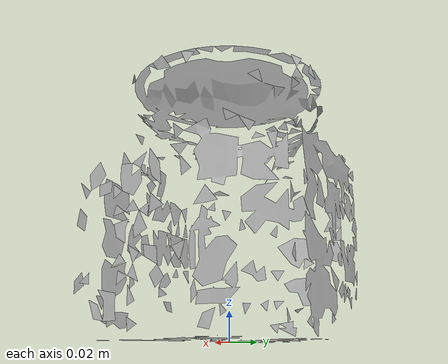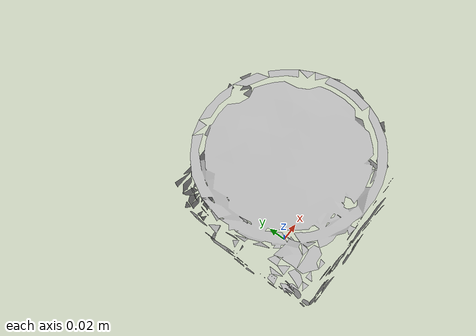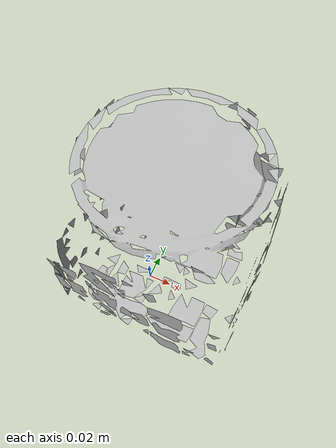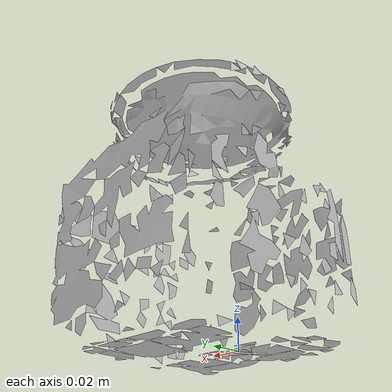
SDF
<?xml version="1.0" ?>
<sdf version="1.4">
  <model name='ycb_070-a_colored_wood_blocks'>
    <link name='body'>
      <inertial>
        <mass>3.16755457421</mass>
        <pose>0.0211901563257 0.00854537335696 0.0739091105205 0 0 0</pose>
        <inertia>
          <ixx>0.0104365622696</ixx>
          <ixy>-0.000112453606135</ixy>
          <ixz>9.32373253725e-05</ixz>
          <iyy>0.0101202894836</iyy>
          <iyz>1.26864000782e-05</iyz>
          <izz>0.00833771234049</izz>
        </inertia>
      </inertial>
      <visual name='ycb_070-a_colored_wood_blocks_visual'>
        <pose>0 0 0 0 0 0</pose>
        <geometry>
          <mesh>
            <uri>model://ycb_070-a_colored_wood_blocks/meshes/textured.dae</uri>
          </mesh>
        </geometry>
      </visual>
      <collision name='ycb_070-a_colored_wood_blocks_collision'>
        <pose>0 0 0 0 0 0</pose>
        <geometry>
          <mesh>
            <uri>model://ycb_070-a_colored_wood_blocks/meshes/nontextured.stl</uri>
          </mesh>
        </geometry>
        <max_contacts>10</max_contacts>
      </collision>
    </link>
  </model>
</sdf>
